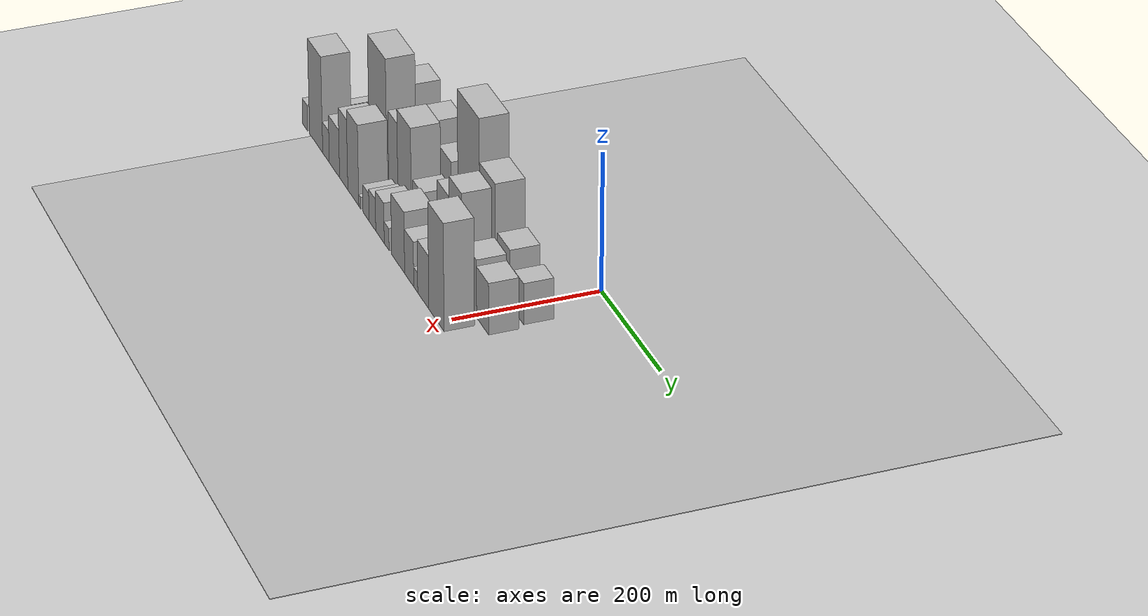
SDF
<sdf version="1.6">
 <world name="default">
  <include><name>ground_plane_1</name><uri>model://HANNAS_ground_plane</uri></include>
  <include>
   <name>ground_plane_2</name>
   <uri>model://HANNAS_ground_plane</uri>
   <pose>100 0 0  0 0 0</pose>
  </include>
  <model name="building_1">
   <static>1</static>
   <pose>100.0000 -523.2998 0 0.000000 0.000000 0.000000</pose>
   <link name="link">
    <pose>0 0 22.50 0 0 0</pose>
    <collision name="collision"><geometry><box><size>40.0000 25.4005 45.0000</size></box></geometry></collision>
    <visual name="visual">
     <cast_shadows>0</cast_shadows>
     <geometry><box><size>40.0000 25.4005 45.0000</size></box></geometry>
     <material>
      <script>
       <uri>model://HANNAS_wall/materials/scripts</uri>
       <uri>model://HANNAS_wall/materials/textures</uri>
       <name>vrc/HANNAS_wall</name>
      </script>
     </material>
    </visual>
   </link>
  </model>
  <model name="building_2">
   <static>1</static>
   <pose>100.0000 -484.8610 0 0.000000 0.000000 0.000000</pose>
   <link name="link">
    <pose>0 0 31.50 0 0 0</pose>
    <collision name="collision"><geometry><box><size>40.0000 33.4771 63.0000</size></box></geometry></collision>
    <visual name="visual">
     <cast_shadows>0</cast_shadows>
     <geometry><box><size>40.0000 33.4771 63.0000</size></box></geometry>
     <material>
      <script>
       <uri>model://HANNAS_wall/materials/scripts</uri>
       <uri>model://HANNAS_wall/materials/textures</uri>
       <name>vrc/HANNAS_wall</name>
      </script>
     </material>
    </visual>
   </link>
  </model>
  <model name="building_3">
   <static>1</static>
   <pose>100.0000 -442.2301 0 0.000000 0.000000 0.000000</pose>
   <link name="link">
    <pose>0 0 36.00 0 0 0</pose>
    <collision name="collision"><geometry><box><size>40.0000 37.7847 72.0000</size></box></geometry></collision>
    <visual name="visual">
     <cast_shadows>0</cast_shadows>
     <geometry><box><size>40.0000 37.7847 72.0000</size></box></geometry>
     <material>
      <script>
       <uri>model://HANNAS_wall/materials/scripts</uri>
       <uri>model://HANNAS_wall/materials/textures</uri>
       <name>vrc/HANNAS_wall</name>
      </script>
     </material>
    </visual>
   </link>
  </model>
  <model name="building_4">
   <static>1</static>
   <pose>100.0000 -400.0121 0 0.000000 0.000000 0.000000</pose>
   <link name="link">
    <pose>0 0 61.50 0 0 0</pose>
    <collision name="collision"><geometry><box><size>40.0000 46.6512 123.0000</size></box></geometry></collision>
    <visual name="visual">
     <cast_shadows>0</cast_shadows>
     <geometry><box><size>40.0000 46.6512 123.0000</size></box></geometry>
     <material>
      <script>
       <uri>model://HANNAS_wall/materials/scripts</uri>
       <uri>model://HANNAS_wall/materials/textures</uri>
       <name>vrc/HANNAS_wall</name>
      </script>
     </material>
    </visual>
   </link>
  </model>
  <model name="building_5">
   <static>1</static>
   <pose>100.0000 -353.0033 0 0.000000 0.000000 0.000000</pose>
   <link name="link">
    <pose>0 0 33.00 0 0 0</pose>
    <collision name="collision"><geometry><box><size>40.0000 33.3665 66.0000</size></box></geometry></collision>
    <visual name="visual">
     <cast_shadows>0</cast_shadows>
     <geometry><box><size>40.0000 33.3665 66.0000</size></box></geometry>
     <material>
      <script>
       <uri>model://HANNAS_wall/materials/scripts</uri>
       <uri>model://HANNAS_wall/materials/textures</uri>
       <name>vrc/HANNAS_wall</name>
      </script>
     </material>
    </visual>
   </link>
  </model>
  <model name="building_6">
   <static>1</static>
   <pose>100.0000 -313.5647 0 0.000000 0.000000 0.000000</pose>
   <link name="link">
    <pose>0 0 57.00 0 0 0</pose>
    <collision name="collision"><geometry><box><size>40.0000 45.5107 114.0000</size></box></geometry></collision>
    <visual name="visual">
     <cast_shadows>0</cast_shadows>
     <geometry><box><size>40.0000 45.5107 114.0000</size></box></geometry>
     <material>
      <script>
       <uri>model://HANNAS_wall/materials/scripts</uri>
       <uri>model://HANNAS_wall/materials/textures</uri>
       <name>vrc/HANNAS_wall</name>
      </script>
     </material>
    </visual>
   </link>
  </model>
  <model name="building_7">
   <static>1</static>
   <pose>100.0000 -281.1335 0 0.000000 0.000000 0.000000</pose>
   <link name="link">
    <pose>0 0 18.00 0 0 0</pose>
    <collision name="collision"><geometry><box><size>40.0000 19.3517 36.0000</size></box></geometry></collision>
    <visual name="visual">
     <cast_shadows>0</cast_shadows>
     <geometry><box><size>40.0000 19.3517 36.0000</size></box></geometry>
     <material>
      <script>
       <uri>model://HANNAS_wall/materials/scripts</uri>
       <uri>model://HANNAS_wall/materials/textures</uri>
       <name>vrc/HANNAS_wall</name>
      </script>
     </material>
    </visual>
   </link>
  </model>
  <model name="building_8">
   <static>1</static>
   <pose>100.0000 -247.7661 0 0.000000 0.000000 0.000000</pose>
   <link name="link">
    <pose>0 0 45.00 0 0 0</pose>
    <collision name="collision"><geometry><box><size>40.0000 47.3833 90.0000</size></box></geometry></collision>
    <visual name="visual">
     <cast_shadows>0</cast_shadows>
     <geometry><box><size>40.0000 47.3833 90.0000</size></box></geometry>
     <material>
      <script>
       <uri>model://HANNAS_wall/materials/scripts</uri>
       <uri>model://HANNAS_wall/materials/textures</uri>
       <name>vrc/HANNAS_wall</name>
      </script>
     </material>
    </visual>
   </link>
  </model>
  <model name="building_9">
   <static>1</static>
   <pose>100.0000 -213.0983 0 0.000000 0.000000 0.000000</pose>
   <link name="link">
    <pose>0 0 19.50 0 0 0</pose>
    <collision name="collision"><geometry><box><size>40.0000 21.9523 39.0000</size></box></geometry></collision>
    <visual name="visual">
     <cast_shadows>0</cast_shadows>
     <geometry><box><size>40.0000 21.9523 39.0000</size></box></geometry>
     <material>
      <script>
       <uri>model://HANNAS_wall/materials/scripts</uri>
       <uri>model://HANNAS_wall/materials/textures</uri>
       <name>vrc/HANNAS_wall</name>
      </script>
     </material>
    </visual>
   </link>
  </model>
  <model name="building_10">
   <static>1</static>
   <pose>100.0000 -158.5872 0 0.000000 0.000000 0.000000</pose>
   <link name="link">
    <pose>0 0 105.00 0 0 0</pose>
    <collision name="collision"><geometry><box><size>40.0000 81.0699 210.0000</size></box></geometry></collision>
    <visual name="visual">
     <cast_shadows>0</cast_shadows>
     <geometry><box><size>40.0000 81.0699 210.0000</size></box></geometry>
     <material>
      <script>
       <uri>model://HANNAS_wall/materials/scripts</uri>
       <uri>model://HANNAS_wall/materials/textures</uri>
       <name>vrc/HANNAS_wall</name>
      </script>
     </material>
    </visual>
   </link>
  </model>
  <model name="building_11">
   <static>1</static>
   <pose>100.0000 -89.3004 0 0.000000 0.000000 0.000000</pose>
   <link name="link">
    <pose>0 0 73.50 0 0 0</pose>
    <collision name="collision"><geometry><box><size>40.0000 57.5038 147.0000</size></box></geometry></collision>
    <visual name="visual">
     <cast_shadows>0</cast_shadows>
     <geometry><box><size>40.0000 57.5038 147.0000</size></box></geometry>
     <material>
      <script>
       <uri>model://HANNAS_wall/materials/scripts</uri>
       <uri>model://HANNAS_wall/materials/textures</uri>
       <name>vrc/HANNAS_wall</name>
      </script>
     </material>
    </visual>
   </link>
  </model>
  <model name="building_12">
   <static>1</static>
   <pose>100.0000 -29.7991 0 0.000000 0.000000 0.000000</pose>
   <link name="link">
    <pose>0 0 40.50 0 0 0</pose>
    <collision name="collision"><geometry><box><size>40.0000 45.4987 81.0000</size></box></geometry></collision>
    <visual name="visual">
     <cast_shadows>0</cast_shadows>
     <geometry><box><size>40.0000 45.4987 81.0000</size></box></geometry>
     <material>
      <script>
       <uri>model://HANNAS_wall/materials/scripts</uri>
       <uri>model://HANNAS_wall/materials/textures</uri>
       <name>vrc/HANNAS_wall</name>
      </script>
     </material>
    </visual>
   </link>
  </model>
  <model name="building_13">
   <static>1</static>
   <pose>100.0000 -0.4516 0 0.000000 0.000000 0.000000</pose>
   <link name="link">
    <pose>0 0 13.50 0 0 0</pose>
    <collision name="collision"><geometry><box><size>40.0000 13.1964 27.0000</size></box></geometry></collision>
    <visual name="visual">
     <cast_shadows>0</cast_shadows>
     <geometry><box><size>40.0000 13.1964 27.0000</size></box></geometry>
     <material>
      <script>
       <uri>model://HANNAS_wall/materials/scripts</uri>
       <uri>model://HANNAS_wall/materials/textures</uri>
       <name>vrc/HANNAS_wall</name>
      </script>
     </material>
    </visual>
   </link>
  </model>
  <model name="building_14">
   <static>1</static>
   <pose>100.0000 23.7099 0 0.000000 0.000000 0.000000</pose>
   <link name="link">
    <pose>0 0 30.00 0 0 0</pose>
    <collision name="collision"><geometry><box><size>40.0000 35.1267 60.0000</size></box></geometry></collision>
    <visual name="visual">
     <cast_shadows>0</cast_shadows>
     <geometry><box><size>40.0000 35.1267 60.0000</size></box></geometry>
     <material>
      <script>
       <uri>model://HANNAS_wall/materials/scripts</uri>
       <uri>model://HANNAS_wall/materials/textures</uri>
       <name>vrc/HANNAS_wall</name>
      </script>
     </material>
    </visual>
   </link>
  </model>
  <model name="building_31">
   <static>1</static>
   <pose>149.0000 -519.1683 0 0.000000 0.000000 0.000000</pose>
   <link name="link">
    <pose>0 0 15.00 0 0 0</pose>
    <collision name="collision"><geometry><box><size>40.0000 15.6635 30.0000</size></box></geometry></collision>
    <visual name="visual">
     <cast_shadows>0</cast_shadows>
     <geometry><box><size>40.0000 15.6635 30.0000</size></box></geometry>
     <material>
      <script>
       <uri>model://HANNAS_wall/materials/scripts</uri>
       <uri>model://HANNAS_wall/materials/textures</uri>
       <name>vrc/HANNAS_wall</name>
      </script>
     </material>
    </visual>
   </link>
  </model>
  <model name="building_32">
   <static>1</static>
   <pose>149.0000 -370.2662 0 0.000000 0.000000 0.000000</pose>
   <link name="link">
    <pose>0 0 96.00 0 0 0</pose>
    <collision name="collision"><geometry><box><size>40.0000 70.7136 192.0000</size></box></geometry></collision>
    <visual name="visual">
     <cast_shadows>0</cast_shadows>
     <geometry><box><size>40.0000 70.7136 192.0000</size></box></geometry>
     <material>
      <script>
       <uri>model://HANNAS_wall/materials/scripts</uri>
       <uri>model://HANNAS_wall/materials/textures</uri>
       <name>vrc/HANNAS_wall</name>
      </script>
     </material>
    </visual>
   </link>
  </model>
  <model name="building_33">
   <static>1</static>
   <pose>149.0000 -310.7645 0 0.000000 0.000000 0.000000</pose>
   <link name="link">
    <pose>0 0 60.00 0 0 0</pose>
    <collision name="collision"><geometry><box><size>40.0000 36.2898 120.0000</size></box></geometry></collision>
    <visual name="visual">
     <cast_shadows>0</cast_shadows>
     <geometry><box><size>40.0000 36.2898 120.0000</size></box></geometry>
     <material>
      <script>
       <uri>model://HANNAS_wall/materials/scripts</uri>
       <uri>model://HANNAS_wall/materials/textures</uri>
       <name>vrc/HANNAS_wall</name>
      </script>
     </material>
    </visual>
   </link>
  </model>
  <model name="building_34">
   <static>1</static>
   <pose>149.0000 -266.1342 0 0.000000 0.000000 0.000000</pose>
   <link name="link">
    <pose>0 0 70.50 0 0 0</pose>
    <collision name="collision"><geometry><box><size>40.0000 52.9707 141.0000</size></box></geometry></collision>
    <visual name="visual">
     <cast_shadows>0</cast_shadows>
     <geometry><box><size>40.0000 52.9707 141.0000</size></box></geometry>
     <material>
      <script>
       <uri>model://HANNAS_wall/materials/scripts</uri>
       <uri>model://HANNAS_wall/materials/textures</uri>
       <name>vrc/HANNAS_wall</name>
      </script>
     </material>
    </visual>
   </link>
  </model>
  <model name="building_35">
   <static>1</static>
   <pose>149.0000 -215.5051 0 0.000000 0.000000 0.000000</pose>
   <link name="link">
    <pose>0 0 34.50 0 0 0</pose>
    <collision name="collision"><geometry><box><size>40.0000 36.2876 69.0000</size></box></geometry></collision>
    <visual name="visual">
     <cast_shadows>0</cast_shadows>
     <geometry><box><size>40.0000 36.2876 69.0000</size></box></geometry>
     <material>
      <script>
       <uri>model://HANNAS_wall/materials/scripts</uri>
       <uri>model://HANNAS_wall/materials/textures</uri>
       <name>vrc/HANNAS_wall</name>
      </script>
     </material>
    </visual>
   </link>
  </model>
  <model name="building_36">
   <static>1</static>
   <pose>149.0000 -177.1518 0 0.000000 0.000000 0.000000</pose>
   <link name="link">
    <pose>0 0 19.50 0 0 0</pose>
    <collision name="collision"><geometry><box><size>40.0000 22.4188 39.0000</size></box></geometry></collision>
    <visual name="visual">
     <cast_shadows>0</cast_shadows>
     <geometry><box><size>40.0000 22.4188 39.0000</size></box></geometry>
     <material>
      <script>
       <uri>model://HANNAS_wall/materials/scripts</uri>
       <uri>model://HANNAS_wall/materials/textures</uri>
       <name>vrc/HANNAS_wall</name>
      </script>
     </material>
    </visual>
   </link>
  </model>
  <model name="building_37">
   <static>1</static>
   <pose>149.0000 -157.4799 0 0.000000 0.000000 0.000000</pose>
   <link name="link">
    <pose>0 0 15.00 0 0 0</pose>
    <collision name="collision"><geometry><box><size>40.0000 16.9250 30.0000</size></box></geometry></collision>
    <visual name="visual">
     <cast_shadows>0</cast_shadows>
     <geometry><box><size>40.0000 16.9250 30.0000</size></box></geometry>
     <material>
      <script>
       <uri>model://HANNAS_wall/materials/scripts</uri>
       <uri>model://HANNAS_wall/materials/textures</uri>
       <name>vrc/HANNAS_wall</name>
      </script>
     </material>
    </visual>
   </link>
  </model>
  <model name="building_38">
   <static>1</static>
   <pose>149.0000 -116.6155 0 0.000000 0.000000 0.000000</pose>
   <link name="link">
    <pose>0 0 60.00 0 0 0</pose>
    <collision name="collision"><geometry><box><size>40.0000 44.8040 120.0000</size></box></geometry></collision>
    <visual name="visual">
     <cast_shadows>0</cast_shadows>
     <geometry><box><size>40.0000 44.8040 120.0000</size></box></geometry>
     <material>
      <script>
       <uri>model://HANNAS_wall/materials/scripts</uri>
       <uri>model://HANNAS_wall/materials/textures</uri>
       <name>vrc/HANNAS_wall</name>
      </script>
     </material>
    </visual>
   </link>
  </model>
  <model name="building_39">
   <static>1</static>
   <pose>149.0000 -71.2131 0 0.000000 0.000000 0.000000</pose>
   <link name="link">
    <pose>0 0 75.00 0 0 0</pose>
    <collision name="collision"><geometry><box><size>40.0000 46.0008 150.0000</size></box></geometry></collision>
    <visual name="visual">
     <cast_shadows>0</cast_shadows>
     <geometry><box><size>40.0000 46.0008 150.0000</size></box></geometry>
     <material>
      <script>
       <uri>model://HANNAS_wall/materials/scripts</uri>
       <uri>model://HANNAS_wall/materials/textures</uri>
       <name>vrc/HANNAS_wall</name>
      </script>
     </material>
    </visual>
   </link>
  </model>
  <model name="building_40">
   <static>1</static>
   <pose>149.0000 -43.3654 0 0.000000 0.000000 0.000000</pose>
   <link name="link">
    <pose>0 0 10.50 0 0 0</pose>
    <collision name="collision"><geometry><box><size>40.0000 9.6945 21.0000</size></box></geometry></collision>
    <visual name="visual">
     <cast_shadows>0</cast_shadows>
     <geometry><box><size>40.0000 9.6945 21.0000</size></box></geometry>
     <material>
      <script>
       <uri>model://HANNAS_wall/materials/scripts</uri>
       <uri>model://HANNAS_wall/materials/textures</uri>
       <name>vrc/HANNAS_wall</name>
      </script>
     </material>
    </visual>
   </link>
  </model>
  <model name="building_41">
   <static>1</static>
   <pose>149.0000 -16.7103 0 0.000000 0.000000 0.000000</pose>
   <link name="link">
    <pose>0 0 42.00 0 0 0</pose>
    <collision name="collision"><geometry><box><size>40.0000 43.6156 84.0000</size></box></geometry></collision>
    <visual name="visual">
     <cast_shadows>0</cast_shadows>
     <geometry><box><size>40.0000 43.6156 84.0000</size></box></geometry>
     <material>
      <script>
       <uri>model://HANNAS_wall/materials/scripts</uri>
       <uri>model://HANNAS_wall/materials/textures</uri>
       <name>vrc/HANNAS_wall</name>
      </script>
     </material>
    </visual>
   </link>
  </model>
  <model name="building_42">
   <static>1</static>
   <pose>149.0000 27.0247 0 0.000000 0.000000 0.000000</pose>
   <link name="link">
    <pose>0 0 37.50 0 0 0</pose>
    <collision name="collision"><geometry><box><size>40.0000 43.8545 75.0000</size></box></geometry></collision>
    <visual name="visual">
     <cast_shadows>0</cast_shadows>
     <geometry><box><size>40.0000 43.8545 75.0000</size></box></geometry>
     <material>
      <script>
       <uri>model://HANNAS_wall/materials/scripts</uri>
       <uri>model://HANNAS_wall/materials/textures</uri>
       <name>vrc/HANNAS_wall</name>
      </script>
     </material>
    </visual>
   </link>
  </model>
  <model name="building_56">
   <static>1</static>
   <pose>198.0000 -525.8029 0 0.000000 0.000000 0.000000</pose>
   <link name="link">
    <pose>0 0 19.50 0 0 0</pose>
    <collision name="collision"><geometry><box><size>40.0000 20.3942 39.0000</size></box></geometry></collision>
    <visual name="visual">
     <cast_shadows>0</cast_shadows>
     <geometry><box><size>40.0000 20.3942 39.0000</size></box></geometry>
     <material>
      <script>
       <uri>model://HANNAS_wall/materials/scripts</uri>
       <uri>model://HANNAS_wall/materials/textures</uri>
       <name>vrc/HANNAS_wall</name>
      </script>
     </material>
    </visual>
   </link>
  </model>
  <model name="building_57">
   <static>1</static>
   <pose>198.0000 -479.4253 0 0.000000 0.000000 0.000000</pose>
   <link name="link">
    <pose>0 0 72.00 0 0 0</pose>
    <collision name="collision"><geometry><box><size>40.0000 54.3610 144.0000</size></box></geometry></collision>
    <visual name="visual">
     <cast_shadows>0</cast_shadows>
     <geometry><box><size>40.0000 54.3610 144.0000</size></box></geometry>
     <material>
      <script>
       <uri>model://HANNAS_wall/materials/scripts</uri>
       <uri>model://HANNAS_wall/materials/textures</uri>
       <name>vrc/HANNAS_wall</name>
      </script>
     </material>
    </visual>
   </link>
  </model>
  <model name="building_58">
   <static>1</static>
   <pose>198.0000 -438.6541 0 0.000000 0.000000 0.000000</pose>
   <link name="link">
    <pose>0 0 24.00 0 0 0</pose>
    <collision name="collision"><geometry><box><size>40.0000 27.1814 48.0000</size></box></geometry></collision>
    <visual name="visual">
     <cast_shadows>0</cast_shadows>
     <geometry><box><size>40.0000 27.1814 48.0000</size></box></geometry>
     <material>
      <script>
       <uri>model://HANNAS_wall/materials/scripts</uri>
       <uri>model://HANNAS_wall/materials/textures</uri>
       <name>vrc/HANNAS_wall</name>
      </script>
     </material>
    </visual>
   </link>
  </model>
  <model name="building_59">
   <static>1</static>
   <pose>198.0000 -404.0863 0 0.000000 0.000000 0.000000</pose>
   <link name="link">
    <pose>0 0 36.00 0 0 0</pose>
    <collision name="collision"><geometry><box><size>40.0000 41.9543 72.0000</size></box></geometry></collision>
    <visual name="visual">
     <cast_shadows>0</cast_shadows>
     <geometry><box><size>40.0000 41.9543 72.0000</size></box></geometry>
     <material>
      <script>
       <uri>model://HANNAS_wall/materials/scripts</uri>
       <uri>model://HANNAS_wall/materials/textures</uri>
       <name>vrc/HANNAS_wall</name>
      </script>
     </material>
    </visual>
   </link>
  </model>
  <model name="building_60">
   <static>1</static>
   <pose>198.0000 -366.3889 0 0.000000 0.000000 0.000000</pose>
   <link name="link">
    <pose>0 0 52.50 0 0 0</pose>
    <collision name="collision"><geometry><box><size>40.0000 33.4406 105.0000</size></box></geometry></collision>
    <visual name="visual">
     <cast_shadows>0</cast_shadows>
     <geometry><box><size>40.0000 33.4406 105.0000</size></box></geometry>
     <material>
      <script>
       <uri>model://HANNAS_wall/materials/scripts</uri>
       <uri>model://HANNAS_wall/materials/textures</uri>
       <name>vrc/HANNAS_wall</name>
      </script>
     </material>
    </visual>
   </link>
  </model>
  <model name="building_61">
   <static>1</static>
   <pose>198.0000 -327.5691 0 0.000000 0.000000 0.000000</pose>
   <link name="link">
    <pose>0 0 60.00 0 0 0</pose>
    <collision name="collision"><geometry><box><size>40.0000 44.1988 120.0000</size></box></geometry></collision>
    <visual name="visual">
     <cast_shadows>0</cast_shadows>
     <geometry><box><size>40.0000 44.1988 120.0000</size></box></geometry>
     <material>
      <script>
       <uri>model://HANNAS_wall/materials/scripts</uri>
       <uri>model://HANNAS_wall/materials/textures</uri>
       <name>vrc/HANNAS_wall</name>
      </script>
     </material>
    </visual>
   </link>
  </model>
  <model name="building_62">
   <static>1</static>
   <pose>198.0000 -301.6366 0 0.000000 0.000000 0.000000</pose>
   <link name="link">
    <pose>0 0 9.00 0 0 0</pose>
    <collision name="collision"><geometry><box><size>40.0000 7.6662 18.0000</size></box></geometry></collision>
    <visual name="visual">
     <cast_shadows>0</cast_shadows>
     <geometry><box><size>40.0000 7.6662 18.0000</size></box></geometry>
     <material>
      <script>
       <uri>model://HANNAS_wall/materials/scripts</uri>
       <uri>model://HANNAS_wall/materials/textures</uri>
       <name>vrc/HANNAS_wall</name>
      </script>
     </material>
    </visual>
   </link>
  </model>
  <model name="building_63">
   <static>1</static>
   <pose>198.0000 -276.7914 0 0.000000 0.000000 0.000000</pose>
   <link name="link">
    <pose>0 0 21.00 0 0 0</pose>
    <collision name="collision"><geometry><box><size>40.0000 24.0243 42.0000</size></box></geometry></collision>
    <visual name="visual">
     <cast_shadows>0</cast_shadows>
     <geometry><box><size>40.0000 24.0243 42.0000</size></box></geometry>
     <material>
      <script>
       <uri>model://HANNAS_wall/materials/scripts</uri>
       <uri>model://HANNAS_wall/materials/textures</uri>
       <name>vrc/HANNAS_wall</name>
      </script>
     </material>
    </visual>
   </link>
  </model>
  <model name="building_64">
   <static>1</static>
   <pose>198.0000 -251.5776 0 0.000000 0.000000 0.000000</pose>
   <link name="link">
    <pose>0 0 24.00 0 0 0</pose>
    <collision name="collision"><geometry><box><size>40.0000 26.4033 48.0000</size></box></geometry></collision>
    <visual name="visual">
     <cast_shadows>0</cast_shadows>
     <geometry><box><size>40.0000 26.4033 48.0000</size></box></geometry>
     <material>
      <script>
       <uri>model://HANNAS_wall/materials/scripts</uri>
       <uri>model://HANNAS_wall/materials/textures</uri>
       <name>vrc/HANNAS_wall</name>
      </script>
     </material>
    </visual>
   </link>
  </model>
  <model name="building_65">
   <static>1</static>
   <pose>198.0000 -221.7648 0 0.000000 0.000000 0.000000</pose>
   <link name="link">
    <pose>0 0 30.00 0 0 0</pose>
    <collision name="collision"><geometry><box><size>40.0000 33.2224 60.0000</size></box></geometry></collision>
    <visual name="visual">
     <cast_shadows>0</cast_shadows>
     <geometry><box><size>40.0000 33.2224 60.0000</size></box></geometry>
     <material>
      <script>
       <uri>model://HANNAS_wall/materials/scripts</uri>
       <uri>model://HANNAS_wall/materials/textures</uri>
       <name>vrc/HANNAS_wall</name>
      </script>
     </material>
    </visual>
   </link>
  </model>
  <model name="building_66">
   <static>1</static>
   <pose>198.0000 -195.7452 0 0.000000 0.000000 0.000000</pose>
   <link name="link">
    <pose>0 0 16.50 0 0 0</pose>
    <collision name="collision"><geometry><box><size>40.0000 18.8168 33.0000</size></box></geometry></collision>
    <visual name="visual">
     <cast_shadows>0</cast_shadows>
     <geometry><box><size>40.0000 18.8168 33.0000</size></box></geometry>
     <material>
      <script>
       <uri>model://HANNAS_wall/materials/scripts</uri>
       <uri>model://HANNAS_wall/materials/textures</uri>
       <name>vrc/HANNAS_wall</name>
      </script>
     </material>
    </visual>
   </link>
  </model>
  <model name="building_67">
   <static>1</static>
   <pose>198.0000 -151.3024 0 0.000000 0.000000 0.000000</pose>
   <link name="link">
    <pose>0 0 45.00 0 0 0</pose>
    <collision name="collision"><geometry><box><size>40.0000 50.0687 90.0000</size></box></geometry></collision>
    <visual name="visual">
     <cast_shadows>0</cast_shadows>
     <geometry><box><size>40.0000 50.0687 90.0000</size></box></geometry>
     <material>
      <script>
       <uri>model://HANNAS_wall/materials/scripts</uri>
       <uri>model://HANNAS_wall/materials/textures</uri>
       <name>vrc/HANNAS_wall</name>
      </script>
     </material>
    </visual>
   </link>
  </model>
  <model name="building_68">
   <static>1</static>
   <pose>198.0000 -108.8697 0 0.000000 0.000000 0.000000</pose>
   <link name="link">
    <pose>0 0 33.00 0 0 0</pose>
    <collision name="collision"><geometry><box><size>40.0000 34.7968 66.0000</size></box></geometry></collision>
    <visual name="visual">
     <cast_shadows>0</cast_shadows>
     <geometry><box><size>40.0000 34.7968 66.0000</size></box></geometry>
     <material>
      <script>
       <uri>model://HANNAS_wall/materials/scripts</uri>
       <uri>model://HANNAS_wall/materials/textures</uri>
       <name>vrc/HANNAS_wall</name>
      </script>
     </material>
    </visual>
   </link>
  </model>
  <model name="building_69">
   <static>1</static>
   <pose>198.0000 -83.9388 0 0.000000 0.000000 0.000000</pose>
   <link name="link">
    <pose>0 0 15.00 0 0 0</pose>
    <collision name="collision"><geometry><box><size>40.0000 15.0648 30.0000</size></box></geometry></collision>
    <visual name="visual">
     <cast_shadows>0</cast_shadows>
     <geometry><box><size>40.0000 15.0648 30.0000</size></box></geometry>
     <material>
      <script>
       <uri>model://HANNAS_wall/materials/scripts</uri>
       <uri>model://HANNAS_wall/materials/textures</uri>
       <name>vrc/HANNAS_wall</name>
      </script>
     </material>
    </visual>
   </link>
  </model>
  <model name="building_70">
   <static>1</static>
   <pose>198.0000 -55.4858 0 0.000000 0.000000 0.000000</pose>
   <link name="link">
    <pose>0 0 39.00 0 0 0</pose>
    <collision name="collision"><geometry><box><size>40.0000 41.8413 78.0000</size></box></geometry></collision>
    <visual name="visual">
     <cast_shadows>0</cast_shadows>
     <geometry><box><size>40.0000 41.8413 78.0000</size></box></geometry>
     <material>
      <script>
       <uri>model://HANNAS_wall/materials/scripts</uri>
       <uri>model://HANNAS_wall/materials/textures</uri>
       <name>vrc/HANNAS_wall</name>
      </script>
     </material>
    </visual>
   </link>
  </model>
  <model name="building_71">
   <static>1</static>
   <pose>198.0000 -6.1204 0 0.000000 0.000000 0.000000</pose>
   <link name="link">
    <pose>0 0 78.00 0 0 0</pose>
    <collision name="collision"><geometry><box><size>40.0000 56.8894 156.0000</size></box></geometry></collision>
    <visual name="visual">
     <cast_shadows>0</cast_shadows>
     <geometry><box><size>40.0000 56.8894 156.0000</size></box></geometry>
     <material>
      <script>
       <uri>model://HANNAS_wall/materials/scripts</uri>
       <uri>model://HANNAS_wall/materials/textures</uri>
       <name>vrc/HANNAS_wall</name>
      </script>
     </material>
    </visual>
   </link>
  </model>
 </world>
</sdf>
